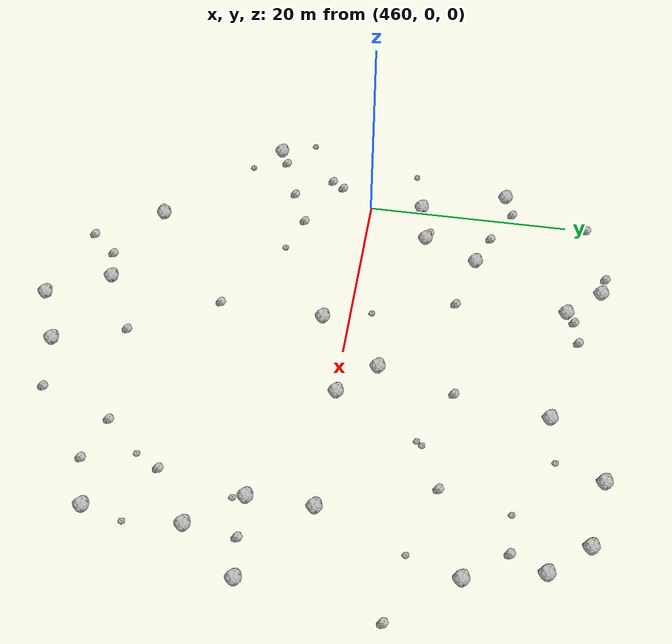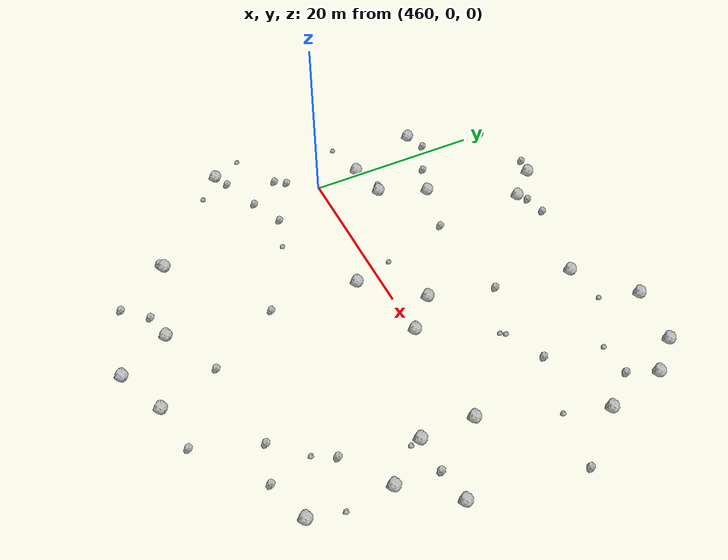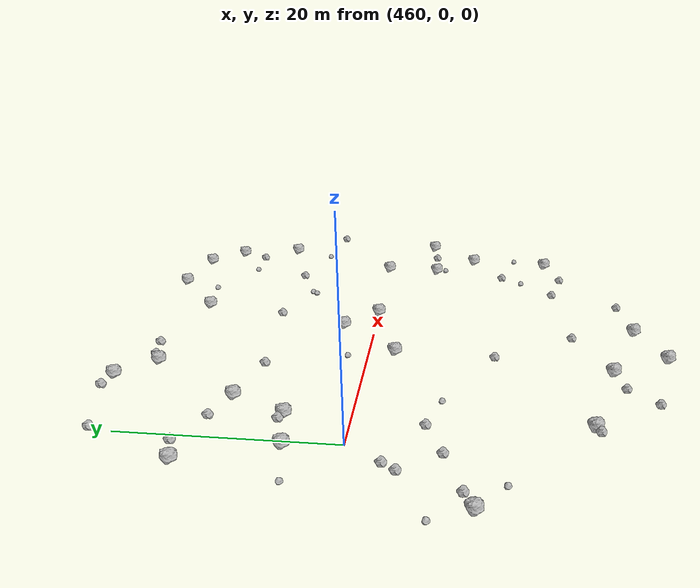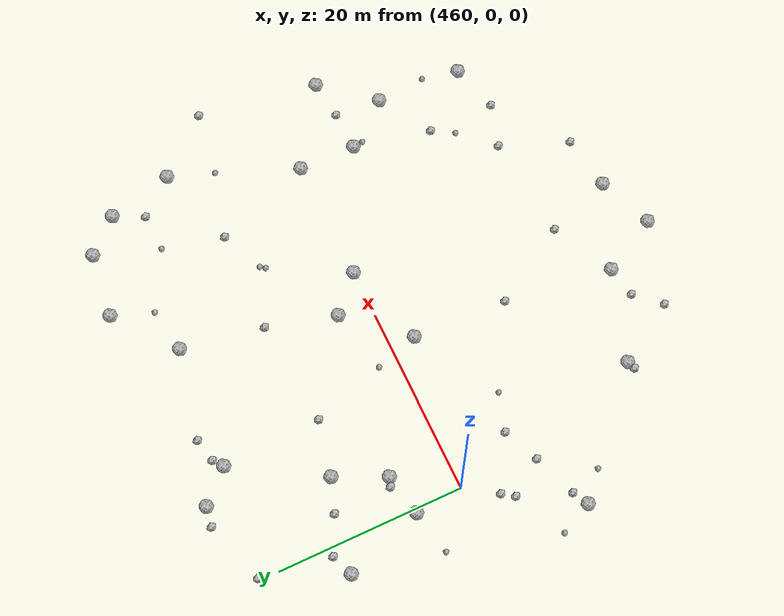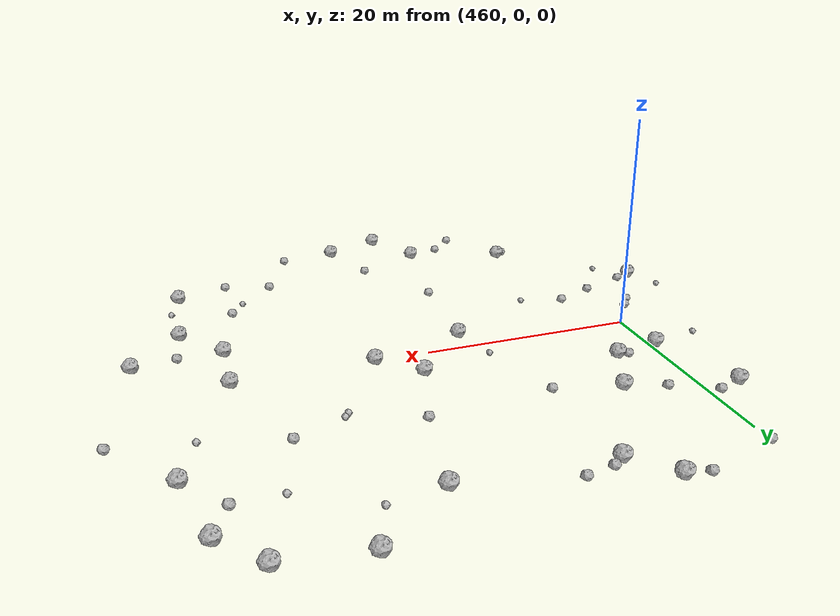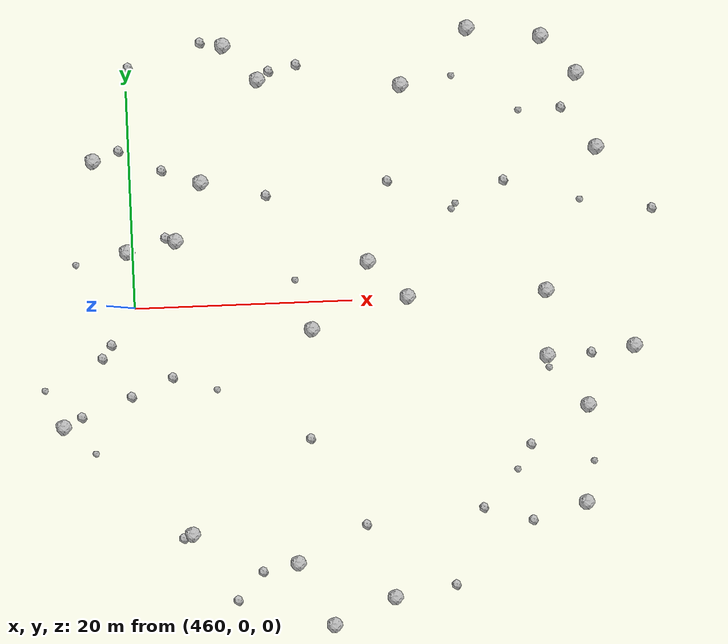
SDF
<sdf version="1.6">
 <world name="default">
  <include><uri>model://sun</uri></include>
  <model name="rock1_12_3">
   <include><uri>model://rock1</uri><pose>485.2069659336083 19.57185512286693 0.5 0 0 0</pose></include>
  </model>
  <model name="rock1_12_4">
   <include><uri>model://rock1</uri><pose>501.34344011724096 20.05734737637347 0.5 0 0 0</pose></include>
  </model>
  <model name="rock1_12_5">
   <include><uri>model://rock1</uri><pose>459.5534150205807 5.179206919899677 0.5 0 0 0</pose></include>
  </model>
  <model name="rock1_12_6">
   <include><uri>model://rock1</uri><pose>476.22608234783297 -2.5371610724026823 0.5 0 0 0</pose></include>
  </model>
  <model name="rock1_12_7">
   <include><uri>model://rock1</uri><pose>482.92601067284284 -27.395131398381615 0.5 0 0 0</pose></include>
  </model>
  <model name="rock1_12_8">
   <include><uri>model://rock1</uri><pose>501.3113884709072 -10.434062116406263 0.5 0 0 0</pose></include>
  </model>
  <model name="rock1_12_9">
   <include><uri>model://rock1</uri><pose>491.49179141409803 24.537940568848924 0.5 0 0 0</pose></include>
  </model>
  <model name="rock1_12_10">
   <include><uri>model://rock1</uri><pose>485.1202185161395 0.11932971179353302 0.5 0 0 0</pose></include>
  </model>
  <model name="rock1_12_11">
   <include><uri>model://rock1</uri><pose>456.73413570599143 13.641970202129492 0.5 0 0 0</pose></include>
  </model>
  <model name="rock1_12_12">
   <include><uri>model://rock1</uri><pose>464.03943303933374 6.040274748586178 0.5 0 0 0</pose></include>
  </model>
  <model name="rock1_12_13">
   <include><uri>model://rock1</uri><pose>500.812807959209 -19.36099867903569 0.5 0 0 0</pose></include>
  </model>
  <model name="rock1_12_14">
   <include><uri>model://rock1</uri><pose>497.8530547286403 0.22538922452518406 0.5 0 0 0</pose></include>
  </model>
  <model name="rock1_12_15">
   <include><uri>model://rock1</uri><pose>481.6011362733019 3.4956103018372247 0.5 0 0 0</pose></include>
  </model>
  <model name="rock1_12_16">
   <include><uri>model://rock1</uri><pose>502.9379733494758 13.187520665224419 0.5 0 0 0</pose></include>
  </model>
  <model name="rock1_12_17">
   <include><uri>model://rock1</uri><pose>497.73331909318927 -5.769812604631394 0.5 0 0 0</pose></include>
  </model>
  <model name="rock1_12_18">
   <include><uri>model://rock1</uri><pose>464.5541590206699 -20.92468505519954 0.5 0 0 0</pose></include>
  </model>
  <model name="rock1_12_19">
   <include><uri>model://rock1</uri><pose>466.52986403345403 11.310077977897464 0.5 0 0 0</pose></include>
  </model>
  <model name="rock1_12_20">
   <include><uri>model://rock1</uri><pose>469.0462124367564 23.778476621227014 0.5 0 0 0</pose></include>
  </model>
  <model name="rock1_12_21">
   <include><uri>model://rock1</uri><pose>498.2320067035577 23.56714562038386 0.5 0 0 0</pose></include>
  </model>
  <model name="rock1_12_22">
   <include><uri>model://rock1</uri><pose>505.7636896505805 -5.150690594022247 0.5 0 0 0</pose></include>
  </model>
  <model name="rock1_12_23">
   <include><uri>model://rock1</uri><pose>453.11965113952016 -10.643934680947634 0.5 0 0 0</pose></include>
  </model>
  <model name="rock1_12_24">
   <include><uri>model://rock1</uri><pose>472.1098249895366 20.531794525990307 0.5 0 0 0</pose></include>
  </model>
  <model name="rock1_12_25">
   <include><uri>model://rock1</uri><pose>474.14370260583905 -23.935710832927402 0.5 0 0 0</pose></include>
  </model>
  <model name="rock1_12_26">
   <include><uri>model://rock1</uri><pose>477.24575759527283 -29.723905072715205 0.5 0 0 0</pose></include>
  </model>
  <model name="rock2_12_0">
   <include><uri>model://rock2</uri><pose>495.86342466743923 -20.8413047753587 0.3 0 0 0</pose></include>
  </model>
  <model name="rock2_12_1">
   <include><uri>model://rock2</uri><pose>483.64818064941375 10.809928127584726 0.3 0 0 0</pose></include>
  </model>
  <model name="rock2_12_2">
   <include><uri>model://rock2</uri><pose>491.36851782234027 -19.522908615222185 0.3 0 0 0</pose></include>
  </model>
  <model name="rock2_12_3">
   <include><uri>model://rock2</uri><pose>501.79350595794244 -5.653877857225442 0.3 0 0 0</pose></include>
  </model>
  <model name="rock2_12_4">
   <include><uri>model://rock2</uri><pose>499.85222679632557 16.961244252748273 0.3 0 0 0</pose></include>
  </model>
  <model name="rock2_12_5">
   <include><uri>model://rock2</uri><pose>463.2803899607681 -6.468387672022917 0.3 0 0 0</pose></include>
  </model>
  <model name="rock2_12_6">
   <include><uri>model://rock2</uri><pose>488.5658421734277 -26.508280237932752 0.3 0 0 0</pose></include>
  </model>
  <model name="rock2_12_7">
   <include><uri>model://rock2</uri><pose>463.70912688285 -21.28125002138407 0.3 0 0 0</pose></include>
  </model>
  <model name="rock2_12_8">
   <include><uri>model://rock2</uri><pose>462.96870620833266 12.56600838411736 0.3 0 0 0</pose></include>
  </model>
  <model name="rock2_12_9">
   <include><uri>model://rock2</uri><pose>456.8822257038905 -4.497041875724072 0.3 0 0 0</pose></include>
  </model>
  <model name="rock2_12_10">
   <include><uri>model://rock2</uri><pose>460.2681527759982 22.118013401699933 0.3 0 0 0</pose></include>
  </model>
  <model name="rock2_12_11">
   <include><uri>model://rock2</uri><pose>459.0902169568009 14.521110479789058 0.3 0 0 0</pose></include>
  </model>
  <model name="rock2_12_12">
   <include><uri>model://rock2</uri><pose>480.55461704662383 -20.668879884107483 0.3 0 0 0</pose></include>
  </model>
  <model name="rock2_12_13">
   <include><uri>model://rock2</uri><pose>494.322519391189 10.476004602646547 0.3 0 0 0</pose></include>
  </model>
  <model name="rock2_12_14">
   <include><uri>model://rock2</uri><pose>459.4356448255501 -8.104068766928776 0.3 0 0 0</pose></include>
  </model>
  <model name="rock2_12_15">
   <include><uri>model://rock2</uri><pose>470.87673176118875 -24.61847292195096 0.3 0 0 0</pose></include>
  </model>
  <model name="rock2_12_16">
   <include><uri>model://rock2</uri><pose>463.07638443347315 6.37318061208655 0.3 0 0 0</pose></include>
  </model>
  <model name="rock2_12_17">
   <include><uri>model://rock2</uri><pose>472.45231348728305 9.915884812815925 0.3 0 0 0</pose></include>
  </model>
  <model name="rock2_12_18">
   <include><uri>model://rock2</uri><pose>475.67021096473314 21.81684040679704 0.3 0 0 0</pose></include>
  </model>
  <model name="rock2_12_19">
   <include><uri>model://rock2</uri><pose>454.7985364914524 -9.806026402536357 0.3 0 0 0</pose></include>
  </model>
  <model name="rock2_12_20">
   <include><uri>model://rock2</uri><pose>473.14536420770094 21.309445343974772 0.3 0 0 0</pose></include>
  </model>
  <model name="rock2_12_21">
   <include><uri>model://rock2</uri><pose>495.9318209535356 -13.865416592515874 0.3 0 0 0</pose></include>
  </model>
  <model name="rock2_12_22">
   <include><uri>model://rock2</uri><pose>507.84492288775965 7.388077932023506 0.3 0 0 0</pose></include>
  </model>
  <model name="rock2_12_23">
   <include><uri>model://rock2</uri><pose>457.7535526804748 -3.2745983257558144 0.3 0 0 0</pose></include>
  </model>
  <model name="rock2_12_24">
   <include><uri>model://rock2</uri><pose>475.73129656302456 -12.580941538956353 0.3 0 0 0</pose></include>
  </model>
  <model name="rock2_12_25">
   <include><uri>model://rock2</uri><pose>466.9510834153091 24.16584800243467 0.3 0 0 0</pose></include>
  </model>
  <model name="rock2_12_26">
   <include><uri>model://rock2</uri><pose>468.48576746758374 -27.17565781298414 0.3 0 0 0</pose></include>
  </model>
  <model name="rock3_12_0">
   <include><uri>model://rock3</uri><pose>497.8494245401458 -6.906841495932209 0.2 0 0 0</pose></include>
  </model>
  <model name="rock3_12_1">
   <include><uri>model://rock3</uri><pose>454.74257330894795 4.181305240712824 0.2 0 0 0</pose></include>
  </model>
  <model name="rock3_12_2">
   <include><uri>model://rock3</uri><pose>474.8202106922973 2.0287383599238638 0.2 0 0 0</pose></include>
  </model>
  <model name="rock3_12_3">
   <include><uri>model://rock3</uri><pose>455.9107242238795 -13.2368169667918 0.2 0 0 0</pose></include>
  </model>
  <model name="rock3_12_4">
   <include><uri>model://rock3</uri><pose>489.88457908792935 20.242815494548147 0.2 0 0 0</pose></include>
  </model>
  <model name="rock3_12_5">
   <include><uri>model://rock3</uri><pose>494.5997744752329 -16.15524307358025 0.2 0 0 0</pose></include>
  </model>
  <model name="rock3_12_6">
   <include><uri>model://rock3</uri><pose>501.65536652364216 -15.649612436154033 0.2 0 0 0</pose></include>
  </model>
  <model name="rock3_12_7">
   <include><uri>model://rock3</uri><pose>451.45624660286705 -7.26699868394121 0.2 0 0 0</pose></include>
  </model>
  <model name="rock3_12_8">
   <include><uri>model://rock3</uri><pose>467.27015798479175 -7.762302918430951 0.2 0 0 0</pose></include>
  </model>
  <model name="rock3_12_9">
   <include><uri>model://rock3</uri><pose>489.81065288203195 8.520866215496639 0.2 0 0 0</pose></include>
  </model>
  <model name="rock3_12_10">
   <include><uri>model://rock3</uri><pose>495.9159191128731 16.841827751920675 0.2 0 0 0</pose></include>
  </model>
  <model name="rock3_12_11">
   <include><uri>model://rock3</uri><pose>489.42793856840933 8.011591048511555 0.2 0 0 0</pose></include>
  </model>
  <model name="rock3_12_12">
   <include><uri>model://rock3</uri><pose>501.24497597909976 8.426938662634498 0.2 0 0 0</pose></include>
  </model>
 </world>
</sdf>
